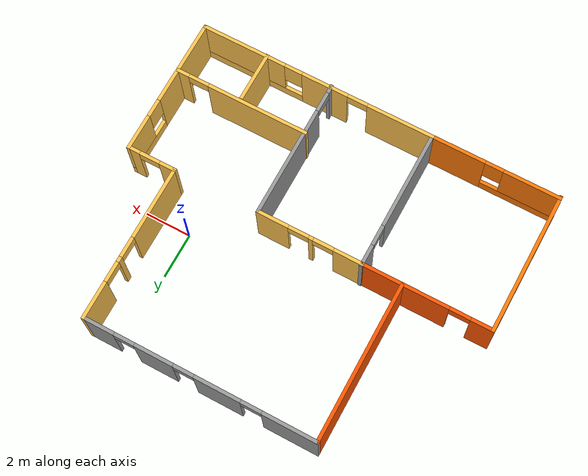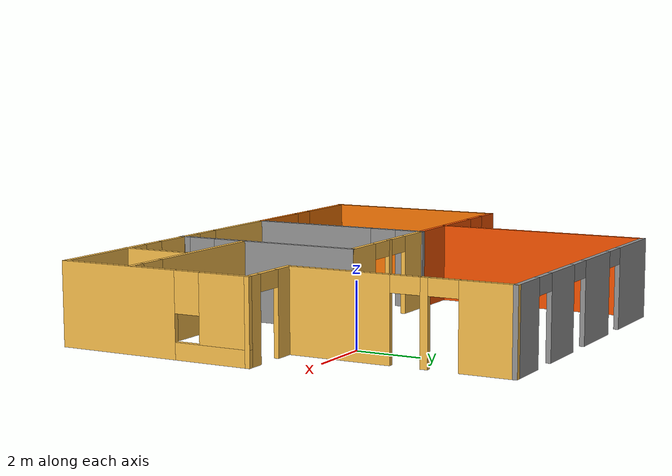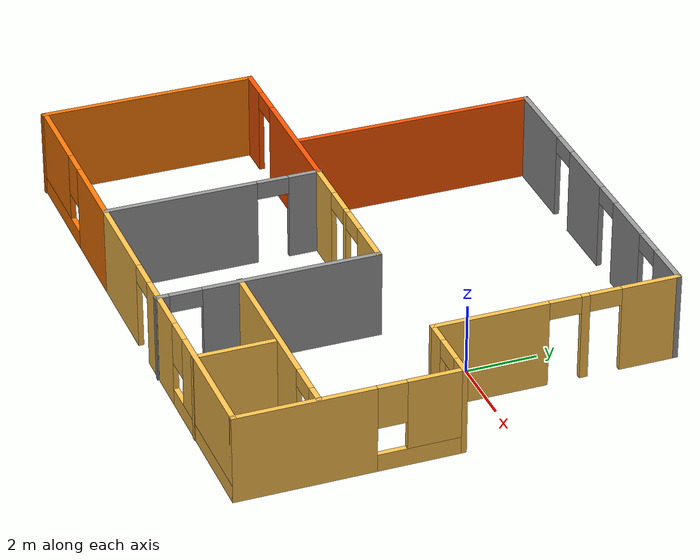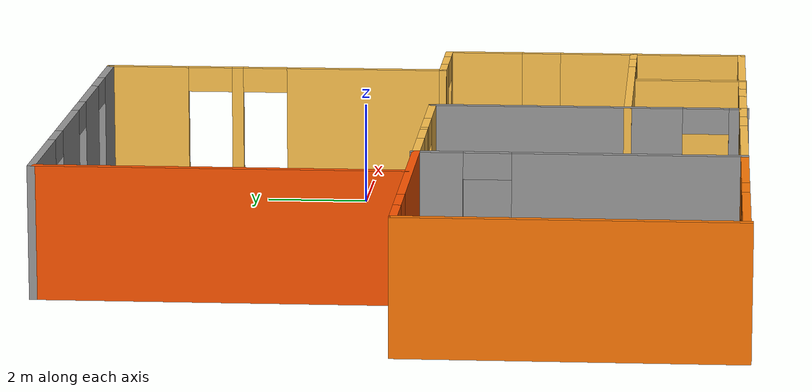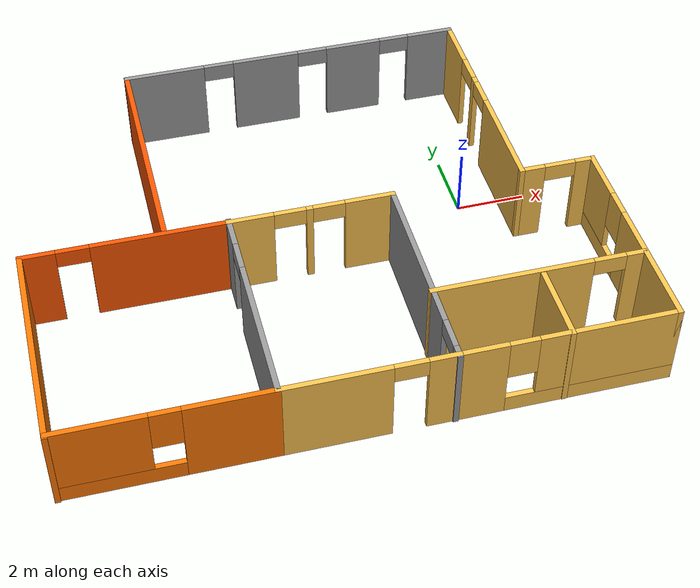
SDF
<?xml version='1.0'?>
<sdf version='1.6'>
  <model name='home'>
    <pose frame=''>-4.67293 -1.11377 0 0 -0 0</pose>
    <link name='Wall_29'>
      <collision name='Wall_29_Collision'>
        <geometry>
          <box>
            <size>6.25 0.15 2.5</size>
          </box>
        </geometry>
        <pose frame=''>0 0 1.25 0 -0 0</pose>
      </collision>
      <visual name='Wall_29_Visual'>
        <pose frame=''>0 0 1.25 0 -0 0</pose>
        <geometry>
          <box>
            <size>6.25 0.15 2.5</size>
          </box>
        </geometry>
        <material>
          <script>
            <uri>file://media/materials/scripts/gazebo.material</uri>
            <name>Gazebo/Grey</name>
          </script>
          <ambient>0.996078 0.47451 0.0196078 1</ambient>
        </material>
        <meta>
          <layer>0</layer>
        </meta>
      </visual>
      <pose frame=''>-8.03132 -3.44452 0 0 -0 1.5708</pose>
    </link>
    <link name='Wall_30'>
      <pose frame=''>-5.23132 -0.394516 0 0 -0 0</pose>
      <visual name='Wall_30_Visual_0'>
        <pose frame=''>-2.36576 0 1.25 0 -0 0</pose>
        <geometry>
          <box>
            <size>1.01847 0.15 2.5</size>
          </box>
        </geometry>
        <material>
          <script>
            <uri>file://media/materials/scripts/gazebo.material</uri>
            <name>Gazebo/Grey</name>
          </script>
          <ambient>1 0.333333 0 1</ambient>
        </material>
        <meta>
          <layer>0</layer>
        </meta>
      </visual>
      <collision name='Wall_30_Collision_0'>
        <geometry>
          <box>
            <size>1.01847 0.15 2.5</size>
          </box>
        </geometry>
        <pose frame=''>-2.36576 0 1.25 0 -0 0</pose>
      </collision>
      <visual name='Wall_30_Visual_1'>
        <pose frame=''>0.959236 0 1.25 0 -0 0</pose>
        <geometry>
          <box>
            <size>3.83153 0.15 2.5</size>
          </box>
        </geometry>
        <material>
          <script>
            <uri>file://media/materials/scripts/gazebo.material</uri>
            <name>Gazebo/Grey</name>
          </script>
          <ambient>1 0.333333 0 1</ambient>
        </material>
        <meta>
          <layer>0</layer>
        </meta>
      </visual>
      <collision name='Wall_30_Collision_1'>
        <geometry>
          <box>
            <size>3.83153 0.15 2.5</size>
          </box>
        </geometry>
        <pose frame=''>0.959236 0 1.25 0 -0 0</pose>
      </collision>
      <visual name='Wall_30_Visual_2'>
        <pose frame=''>-1.40653 0 2.25 0 -0 0</pose>
        <geometry>
          <box>
            <size>0.9 0.15 0.5</size>
          </box>
        </geometry>
        <material>
          <script>
            <uri>file://media/materials/scripts/gazebo.material</uri>
            <name>Gazebo/Grey</name>
          </script>
          <ambient>1 0.333333 0 1</ambient>
        </material>
        <meta>
          <layer>0</layer>
        </meta>
      </visual>
      <collision name='Wall_30_Collision_2'>
        <geometry>
          <box>
            <size>0.9 0.15 0.5</size>
          </box>
        </geometry>
        <pose frame=''>-1.40653 0 2.25 0 -0 0</pose>
      </collision>
    </link>
    <link name='Wall_33'>
      <pose frame=''>-2.41868 -3.40548 0 0 0 -1.5708</pose>
      <visual name='Wall_33_Visual_0'>
        <pose frame=''>-2.63049 0 1.25 0 -0 0</pose>
        <geometry>
          <box>
            <size>0.989023 0.15 2.5</size>
          </box>
        </geometry>
        <material>
          <script>
            <uri>file://media/materials/scripts/gazebo.material</uri>
            <name>Gazebo/Grey</name>
          </script>
          <ambient>1 1 1 1</ambient>
        </material>
        <meta>
          <layer>0</layer>
        </meta>
      </visual>
      <collision name='Wall_33_Collision_0'>
        <geometry>
          <box>
            <size>0.989023 0.15 2.5</size>
          </box>
        </geometry>
        <pose frame=''>-2.63049 0 1.25 0 -0 0</pose>
      </collision>
      <visual name='Wall_33_Visual_1'>
        <pose frame=''>0.944511 0 1.25 0 -0 0</pose>
        <geometry>
          <box>
            <size>4.36098 0.15 2.5</size>
          </box>
        </geometry>
        <material>
          <script>
            <uri>file://media/materials/scripts/gazebo.material</uri>
            <name>Gazebo/Grey</name>
          </script>
          <ambient>1 1 1 1</ambient>
        </material>
        <meta>
          <layer>0</layer>
        </meta>
      </visual>
      <collision name='Wall_33_Collision_1'>
        <geometry>
          <box>
            <size>4.36098 0.15 2.5</size>
          </box>
        </geometry>
        <pose frame=''>0.944511 0 1.25 0 -0 0</pose>
      </collision>
      <visual name='Wall_33_Visual_2'>
        <pose frame=''>-1.68598 0 2.25 0 -0 0</pose>
        <geometry>
          <box>
            <size>0.9 0.15 0.5</size>
          </box>
        </geometry>
        <material>
          <script>
            <uri>file://media/materials/scripts/gazebo.material</uri>
            <name>Gazebo/Grey</name>
          </script>
          <ambient>1 1 1 1</ambient>
        </material>
        <meta>
          <layer>0</layer>
        </meta>
      </visual>
      <collision name='Wall_33_Collision_2'>
        <geometry>
          <box>
            <size>0.9 0.15 0.5</size>
          </box>
        </geometry>
        <pose frame=''>-1.68598 0 2.25 0 -0 0</pose>
      </collision>
    </link>
    <link name='Wall_34'>
      <pose frame=''>-5.21868 -6.45548 0 0 -0 3.14159</pose>
      <visual name='Wall_34_Visual_0'>
        <pose frame=''>-1.65698 0 1.25 0 -0 0</pose>
        <geometry>
          <box>
            <size>2.43604 0.15 2.5</size>
          </box>
        </geometry>
        <material>
          <script>
            <uri>file://media/materials/scripts/gazebo.material</uri>
            <name>Gazebo/Grey</name>
          </script>
          <ambient>0.996078 0.47451 0.0196078 1</ambient>
        </material>
        <meta>
          <layer>0</layer>
        </meta>
      </visual>
      <collision name='Wall_34_Collision_0'>
        <geometry>
          <box>
            <size>2.43604 0.15 2.5</size>
          </box>
        </geometry>
        <pose frame=''>-1.65698 0 1.25 0 -0 0</pose>
      </collision>
      <visual name='Wall_34_Visual_1'>
        <pose frame=''>1.21802 0 0.25 0 -0 0</pose>
        <geometry>
          <box>
            <size>3.31396 0.15 0.5</size>
          </box>
        </geometry>
        <material>
          <script>
            <uri>file://media/materials/scripts/gazebo.material</uri>
            <name>Gazebo/Grey</name>
          </script>
          <ambient>0.996078 0.47451 0.0196078 1</ambient>
        </material>
        <meta>
          <layer>0</layer>
        </meta>
      </visual>
      <collision name='Wall_34_Collision_1'>
        <geometry>
          <box>
            <size>3.31396 0.15 0.5</size>
          </box>
        </geometry>
        <pose frame=''>1.21802 0 0.25 0 -0 0</pose>
      </collision>
      <visual name='Wall_34_Visual_2'>
        <pose frame=''>1.61802 0 1.5 0 -0 0</pose>
        <geometry>
          <box>
            <size>2.51396 0.15 2</size>
          </box>
        </geometry>
        <material>
          <script>
            <uri>file://media/materials/scripts/gazebo.material</uri>
            <name>Gazebo/Grey</name>
          </script>
          <ambient>0.996078 0.47451 0.0196078 1</ambient>
        </material>
        <meta>
          <layer>0</layer>
        </meta>
      </visual>
      <collision name='Wall_34_Collision_2'>
        <geometry>
          <box>
            <size>2.51396 0.15 2</size>
          </box>
        </geometry>
        <pose frame=''>1.61802 0 1.5 0 -0 0</pose>
      </collision>
      <visual name='Wall_34_Visual_3'>
        <pose frame=''>-0.038964 0 1.9 0 -0 0</pose>
        <geometry>
          <box>
            <size>0.8 0.15 1.2</size>
          </box>
        </geometry>
        <material>
          <script>
            <uri>file://media/materials/scripts/gazebo.material</uri>
            <name>Gazebo/Grey</name>
          </script>
          <ambient>0.996078 0.47451 0.0196078 1</ambient>
        </material>
        <meta>
          <layer>0</layer>
        </meta>
      </visual>
      <collision name='Wall_34_Collision_3'>
        <geometry>
          <box>
            <size>0.8 0.15 1.2</size>
          </box>
        </geometry>
        <pose frame=''>-0.038964 0 1.9 0 -0 0</pose>
      </collision>
    </link>
    <link name='Wall_38'>
      <pose frame=''>-0.118679 -6.45548 0 0 -0 0</pose>
      <visual name='Wall_38_Visual_0'>
        <pose frame=''>-0.881556 0 1.25 0 -0 0</pose>
        <geometry>
          <box>
            <size>2.98689 0.15 2.5</size>
          </box>
        </geometry>
        <material>
          <script>
            <uri>file://media/materials/scripts/gazebo.material</uri>
            <name>Gazebo/Grey</name>
          </script>
          <ambient>1 0.764706 0.305882 1</ambient>
        </material>
        <meta>
          <layer>0</layer>
        </meta>
      </visual>
      <collision name='Wall_38_Collision_0'>
        <geometry>
          <box>
            <size>2.98689 0.15 2.5</size>
          </box>
        </geometry>
        <pose frame=''>-0.881556 0 1.25 0 -0 0</pose>
      </collision>
      <visual name='Wall_38_Visual_1'>
        <pose frame=''>1.94344 0 1.25 0 -0 0</pose>
        <geometry>
          <box>
            <size>0.863112 0.15 2.5</size>
          </box>
        </geometry>
        <material>
          <script>
            <uri>file://media/materials/scripts/gazebo.material</uri>
            <name>Gazebo/Grey</name>
          </script>
          <ambient>1 0.764706 0.305882 1</ambient>
        </material>
        <meta>
          <layer>0</layer>
        </meta>
      </visual>
      <collision name='Wall_38_Collision_1'>
        <geometry>
          <box>
            <size>0.863112 0.15 2.5</size>
          </box>
        </geometry>
        <pose frame=''>1.94344 0 1.25 0 -0 0</pose>
      </collision>
      <visual name='Wall_38_Visual_2'>
        <pose frame=''>1.06189 0 2.25 0 -0 0</pose>
        <geometry>
          <box>
            <size>0.9 0.15 0.5</size>
          </box>
        </geometry>
        <material>
          <script>
            <uri>file://media/materials/scripts/gazebo.material</uri>
            <name>Gazebo/Grey</name>
          </script>
          <ambient>1 0.764706 0.305882 1</ambient>
        </material>
        <meta>
          <layer>0</layer>
        </meta>
      </visual>
      <collision name='Wall_38_Collision_2'>
        <geometry>
          <box>
            <size>0.9 0.15 0.5</size>
          </box>
        </geometry>
        <pose frame=''>1.06189 0 2.25 0 -0 0</pose>
      </collision>
    </link>
    <link name='Wall_39'>
      <pose frame=''>5.10632 -6.45548 0 0 -0 0</pose>
      <visual name='Wall_39_Visual_0'>
        <pose frame=''>-2.31199 0 1.25 0 -0 0</pose>
        <geometry>
          <box>
            <size>1.37601 0.15 2.5</size>
          </box>
        </geometry>
        <material>
          <script>
            <uri>file://media/materials/scripts/gazebo.material</uri>
            <name>Gazebo/Grey</name>
          </script>
          <ambient>1 0.764706 0.305882 1</ambient>
        </material>
        <meta>
          <layer>0</layer>
        </meta>
      </visual>
      <collision name='Wall_39_Collision_0'>
        <geometry>
          <box>
            <size>1.37601 0.15 2.5</size>
          </box>
        </geometry>
        <pose frame=''>-2.31199 0 1.25 0 -0 0</pose>
      </collision>
      <visual name='Wall_39_Visual_1'>
        <pose frame=''>0.688007 0 0.25 0 -0 0</pose>
        <geometry>
          <box>
            <size>4.62399 0.15 0.5</size>
          </box>
        </geometry>
        <material>
          <script>
            <uri>file://media/materials/scripts/gazebo.material</uri>
            <name>Gazebo/Grey</name>
          </script>
          <ambient>1 0.764706 0.305882 1</ambient>
        </material>
        <meta>
          <layer>0</layer>
        </meta>
      </visual>
      <collision name='Wall_39_Collision_1'>
        <geometry>
          <box>
            <size>4.62399 0.15 0.5</size>
          </box>
        </geometry>
        <pose frame=''>0.688007 0 0.25 0 -0 0</pose>
      </collision>
      <visual name='Wall_39_Visual_2'>
        <pose frame=''>1.08801 0 1.5 0 -0 0</pose>
        <geometry>
          <box>
            <size>3.82399 0.15 2</size>
          </box>
        </geometry>
        <material>
          <script>
            <uri>file://media/materials/scripts/gazebo.material</uri>
            <name>Gazebo/Grey</name>
          </script>
          <ambient>1 0.764706 0.305882 1</ambient>
        </material>
        <meta>
          <layer>0</layer>
        </meta>
      </visual>
      <collision name='Wall_39_Collision_2'>
        <geometry>
          <box>
            <size>3.82399 0.15 2</size>
          </box>
        </geometry>
        <pose frame=''>1.08801 0 1.5 0 -0 0</pose>
      </collision>
      <visual name='Wall_39_Visual_3'>
        <pose frame=''>-1.22399 0 1.9 0 -0 0</pose>
        <geometry>
          <box>
            <size>0.8 0.15 1.2</size>
          </box>
        </geometry>
        <material>
          <script>
            <uri>file://media/materials/scripts/gazebo.material</uri>
            <name>Gazebo/Grey</name>
          </script>
          <ambient>1 0.764706 0.305882 1</ambient>
        </material>
        <meta>
          <layer>0</layer>
        </meta>
      </visual>
      <collision name='Wall_39_Collision_3'>
        <geometry>
          <box>
            <size>0.8 0.15 1.2</size>
          </box>
        </geometry>
        <pose frame=''>-1.22399 0 1.9 0 -0 0</pose>
      </collision>
    </link>
    <link name='Wall_40'>
      <pose frame=''>8.03132 -3.40548 0 0 -0 1.5708</pose>
      <visual name='Wall_40_Visual_0'>
        <pose frame=''>-1.2027 0 1.25 0 -0 0</pose>
        <geometry>
          <box>
            <size>3.8446 0.15 2.5</size>
          </box>
        </geometry>
        <material>
          <script>
            <uri>file://media/materials/scripts/gazebo.material</uri>
            <name>Gazebo/Grey</name>
          </script>
          <ambient>1 0.764706 0.305882 1</ambient>
        </material>
        <meta>
          <layer>0</layer>
        </meta>
      </visual>
      <collision name='Wall_40_Collision_0'>
        <geometry>
          <box>
            <size>3.8446 0.15 2.5</size>
          </box>
        </geometry>
        <pose frame=''>-1.2027 0 1.25 0 -0 0</pose>
      </collision>
      <visual name='Wall_40_Visual_1'>
        <pose frame=''>1.9223 0 0.25 0 -0 0</pose>
        <geometry>
          <box>
            <size>2.4054 0.15 0.5</size>
          </box>
        </geometry>
        <material>
          <script>
            <uri>file://media/materials/scripts/gazebo.material</uri>
            <name>Gazebo/Grey</name>
          </script>
          <ambient>1 0.764706 0.305882 1</ambient>
        </material>
        <meta>
          <layer>0</layer>
        </meta>
      </visual>
      <collision name='Wall_40_Collision_1'>
        <geometry>
          <box>
            <size>2.4054 0.15 0.5</size>
          </box>
        </geometry>
        <pose frame=''>1.9223 0 0.25 0 -0 0</pose>
      </collision>
      <visual name='Wall_40_Visual_2'>
        <pose frame=''>2.3223 0 1.5 0 -0 0</pose>
        <geometry>
          <box>
            <size>1.6054 0.15 2</size>
          </box>
        </geometry>
        <material>
          <script>
            <uri>file://media/materials/scripts/gazebo.material</uri>
            <name>Gazebo/Grey</name>
          </script>
          <ambient>1 0.764706 0.305882 1</ambient>
        </material>
        <meta>
          <layer>0</layer>
        </meta>
      </visual>
      <collision name='Wall_40_Collision_2'>
        <geometry>
          <box>
            <size>1.6054 0.15 2</size>
          </box>
        </geometry>
        <pose frame=''>2.3223 0 1.5 0 -0 0</pose>
      </collision>
      <visual name='Wall_40_Visual_3'>
        <pose frame=''>1.1196 0 1.9 0 -0 0</pose>
        <geometry>
          <box>
            <size>0.8 0.15 1.2</size>
          </box>
        </geometry>
        <material>
          <script>
            <uri>file://media/materials/scripts/gazebo.material</uri>
            <name>Gazebo/Grey</name>
          </script>
          <ambient>1 0.764706 0.305882 1</ambient>
        </material>
        <meta>
          <layer>0</layer>
        </meta>
      </visual>
      <collision name='Wall_40_Collision_3'>
        <geometry>
          <box>
            <size>0.8 0.15 1.2</size>
          </box>
        </geometry>
        <pose frame=''>1.1196 0 1.9 0 -0 0</pose>
      </collision>
    </link>
    <link name='Wall_41'>
      <pose frame=''>6.98132 -0.355484 0 0 -0 3.14159</pose>
      <visual name='Wall_41_Visual_0'>
        <pose frame=''>-0.827467 0 1.25 0 -0 0</pose>
        <geometry>
          <box>
            <size>0.595067 0.15 2.5</size>
          </box>
        </geometry>
        <material>
          <script>
            <uri>file://media/materials/scripts/gazebo.material</uri>
            <name>Gazebo/Grey</name>
          </script>
          <ambient>1 0.764706 0.305882 1</ambient>
        </material>
        <meta>
          <layer>0</layer>
        </meta>
      </visual>
      <collision name='Wall_41_Collision_0'>
        <geometry>
          <box>
            <size>0.595067 0.15 2.5</size>
          </box>
        </geometry>
        <pose frame=''>-0.827467 0 1.25 0 -0 0</pose>
      </collision>
      <visual name='Wall_41_Visual_1'>
        <pose frame=''>0.747533 0 1.25 0 -0 0</pose>
        <geometry>
          <box>
            <size>0.754933 0.15 2.5</size>
          </box>
        </geometry>
        <material>
          <script>
            <uri>file://media/materials/scripts/gazebo.material</uri>
            <name>Gazebo/Grey</name>
          </script>
          <ambient>1 0.764706 0.305882 1</ambient>
        </material>
        <meta>
          <layer>0</layer>
        </meta>
      </visual>
      <collision name='Wall_41_Collision_1'>
        <geometry>
          <box>
            <size>0.754933 0.15 2.5</size>
          </box>
        </geometry>
        <pose frame=''>0.747533 0 1.25 0 -0 0</pose>
      </collision>
      <visual name='Wall_41_Visual_2'>
        <pose frame=''>-0.079933 0 2.25 0 -0 0</pose>
        <geometry>
          <box>
            <size>0.9 0.15 0.5</size>
          </box>
        </geometry>
        <material>
          <script>
            <uri>file://media/materials/scripts/gazebo.material</uri>
            <name>Gazebo/Grey</name>
          </script>
          <ambient>1 0.764706 0.305882 1</ambient>
        </material>
        <meta>
          <layer>0</layer>
        </meta>
      </visual>
      <collision name='Wall_41_Collision_2'>
        <geometry>
          <box>
            <size>0.9 0.15 0.5</size>
          </box>
        </geometry>
        <pose frame=''>-0.079933 0 2.25 0 -0 0</pose>
      </collision>
    </link>
    <link name='Wall_42'>
      <pose frame=''>5.93132 3.06952 0 0 -0 1.5708</pose>
      <visual name='Wall_42_Visual_0'>
        <pose frame=''>-1.86127 0 1.25 0 -0 0</pose>
        <geometry>
          <box>
            <size>3.27747 0.15 2.5</size>
          </box>
        </geometry>
        <material>
          <script>
            <uri>file://media/materials/scripts/gazebo.material</uri>
            <name>Gazebo/Grey</name>
          </script>
          <ambient>1 0.764706 0.305882 1</ambient>
        </material>
        <meta>
          <layer>0</layer>
        </meta>
      </visual>
      <collision name='Wall_42_Collision_0'>
        <geometry>
          <box>
            <size>3.27747 0.15 2.5</size>
          </box>
        </geometry>
        <pose frame=''>-1.86127 0 1.25 0 -0 0</pose>
      </collision>
      <visual name='Wall_42_Visual_1'>
        <pose frame=''>0.793847 0 1.25 0 -0 0</pose>
        <geometry>
          <box>
            <size>0.232756 0.15 2.5</size>
          </box>
        </geometry>
        <material>
          <script>
            <uri>file://media/materials/scripts/gazebo.material</uri>
            <name>Gazebo/Grey</name>
          </script>
          <ambient>1 0.764706 0.305882 1</ambient>
        </material>
        <meta>
          <layer>0</layer>
        </meta>
      </visual>
      <collision name='Wall_42_Collision_1'>
        <geometry>
          <box>
            <size>0.232756 0.15 2.5</size>
          </box>
        </geometry>
        <pose frame=''>0.793847 0 1.25 0 -0 0</pose>
      </collision>
      <visual name='Wall_42_Visual_2'>
        <pose frame=''>2.65511 0 1.25 0 -0 0</pose>
        <geometry>
          <box>
            <size>1.68978 0.15 2.5</size>
          </box>
        </geometry>
        <material>
          <script>
            <uri>file://media/materials/scripts/gazebo.material</uri>
            <name>Gazebo/Grey</name>
          </script>
          <ambient>1 0.764706 0.305882 1</ambient>
        </material>
        <meta>
          <layer>0</layer>
        </meta>
      </visual>
      <collision name='Wall_42_Collision_2'>
        <geometry>
          <box>
            <size>1.68978 0.15 2.5</size>
          </box>
        </geometry>
        <pose frame=''>2.65511 0 1.25 0 -0 0</pose>
      </collision>
      <visual name='Wall_42_Visual_3'>
        <pose frame=''>0.227469 0 2.25 0 -0 0</pose>
        <geometry>
          <box>
            <size>0.9 0.15 0.5</size>
          </box>
        </geometry>
        <material>
          <script>
            <uri>file://media/materials/scripts/gazebo.material</uri>
            <name>Gazebo/Grey</name>
          </script>
          <ambient>1 0.764706 0.305882 1</ambient>
        </material>
        <meta>
          <layer>0</layer>
        </meta>
      </visual>
      <collision name='Wall_42_Collision_3'>
        <geometry>
          <box>
            <size>0.9 0.15 0.5</size>
          </box>
        </geometry>
        <pose frame=''>0.227469 0 2.25 0 -0 0</pose>
      </collision>
      <visual name='Wall_42_Visual_4'>
        <pose frame=''>1.36023 0 2.25 0 -0 0</pose>
        <geometry>
          <box>
            <size>0.9 0.15 0.5</size>
          </box>
        </geometry>
        <material>
          <script>
            <uri>file://media/materials/scripts/gazebo.material</uri>
            <name>Gazebo/Grey</name>
          </script>
          <ambient>1 0.764706 0.305882 1</ambient>
        </material>
        <meta>
          <layer>0</layer>
        </meta>
      </visual>
      <collision name='Wall_42_Collision_4'>
        <geometry>
          <box>
            <size>0.9 0.15 0.5</size>
          </box>
        </geometry>
        <pose frame=''>1.36023 0 2.25 0 -0 0</pose>
      </collision>
    </link>
    <link name='Wall_43'>
      <pose frame=''>0.881321 6.49452 0 0 -0 3.14159</pose>
      <visual name='Wall_43_Visual_0'>
        <pose frame=''>-4.40937 0 1.25 0 -0 0</pose>
        <geometry>
          <box>
            <size>1.43125 0.15 2.5</size>
          </box>
        </geometry>
        <material>
          <script>
            <uri>file://media/materials/scripts/gazebo.material</uri>
            <name>Gazebo/Grey</name>
          </script>
          <ambient>1 1 1 1</ambient>
        </material>
        <meta>
          <layer>0</layer>
        </meta>
      </visual>
      <collision name='Wall_43_Collision_0'>
        <geometry>
          <box>
            <size>1.43125 0.15 2.5</size>
          </box>
        </geometry>
        <pose frame=''>-4.40937 0 1.25 0 -0 0</pose>
      </collision>
      <visual name='Wall_43_Visual_1'>
        <pose frame=''>-1.94917 0 1.25 0 -0 0</pose>
        <geometry>
          <box>
            <size>1.68916 0.15 2.5</size>
          </box>
        </geometry>
        <material>
          <script>
            <uri>file://media/materials/scripts/gazebo.material</uri>
            <name>Gazebo/Grey</name>
          </script>
          <ambient>1 1 1 1</ambient>
        </material>
        <meta>
          <layer>0</layer>
        </meta>
      </visual>
      <collision name='Wall_43_Collision_1'>
        <geometry>
          <box>
            <size>1.68916 0.15 2.5</size>
          </box>
        </geometry>
        <pose frame=''>-1.94917 0 1.25 0 -0 0</pose>
      </collision>
      <visual name='Wall_43_Visual_2'>
        <pose frame=''>0.801811 0 1.25 0 -0 0</pose>
        <geometry>
          <box>
            <size>2.0128 0.15 2.5</size>
          </box>
        </geometry>
        <material>
          <script>
            <uri>file://media/materials/scripts/gazebo.material</uri>
            <name>Gazebo/Grey</name>
          </script>
          <ambient>1 1 1 1</ambient>
        </material>
        <meta>
          <layer>0</layer>
        </meta>
      </visual>
      <collision name='Wall_43_Collision_2'>
        <geometry>
          <box>
            <size>2.0128 0.15 2.5</size>
          </box>
        </geometry>
        <pose frame=''>0.801811 0 1.25 0 -0 0</pose>
      </collision>
      <visual name='Wall_43_Visual_3'>
        <pose frame=''>3.91661 0 1.25 0 -0 0</pose>
        <geometry>
          <box>
            <size>2.41679 0.15 2.5</size>
          </box>
        </geometry>
        <material>
          <script>
            <uri>file://media/materials/scripts/gazebo.material</uri>
            <name>Gazebo/Grey</name>
          </script>
          <ambient>1 1 1 1</ambient>
        </material>
        <meta>
          <layer>0</layer>
        </meta>
      </visual>
      <collision name='Wall_43_Collision_3'>
        <geometry>
          <box>
            <size>2.41679 0.15 2.5</size>
          </box>
        </geometry>
        <pose frame=''>3.91661 0 1.25 0 -0 0</pose>
      </collision>
      <visual name='Wall_43_Visual_4'>
        <pose frame=''>-3.24375 0 2.25 0 -0 0</pose>
        <geometry>
          <box>
            <size>0.9 0.15 0.5</size>
          </box>
        </geometry>
        <material>
          <script>
            <uri>file://media/materials/scripts/gazebo.material</uri>
            <name>Gazebo/Grey</name>
          </script>
          <ambient>1 1 1 1</ambient>
        </material>
        <meta>
          <layer>0</layer>
        </meta>
      </visual>
      <collision name='Wall_43_Collision_4'>
        <geometry>
          <box>
            <size>0.9 0.15 0.5</size>
          </box>
        </geometry>
        <pose frame=''>-3.24375 0 2.25 0 -0 0</pose>
      </collision>
      <visual name='Wall_43_Visual_5'>
        <pose frame=''>-0.654589 0 2.25 0 -0 0</pose>
        <geometry>
          <box>
            <size>0.9 0.15 0.5</size>
          </box>
        </geometry>
        <material>
          <script>
            <uri>file://media/materials/scripts/gazebo.material</uri>
            <name>Gazebo/Grey</name>
          </script>
          <ambient>1 1 1 1</ambient>
        </material>
        <meta>
          <layer>0</layer>
        </meta>
      </visual>
      <collision name='Wall_43_Collision_5'>
        <geometry>
          <box>
            <size>0.9 0.15 0.5</size>
          </box>
        </geometry>
        <pose frame=''>-0.654589 0 2.25 0 -0 0</pose>
      </collision>
      <visual name='Wall_43_Visual_6'>
        <pose frame=''>2.25821 0 2.25 0 -0 0</pose>
        <geometry>
          <box>
            <size>0.9 0.15 0.5</size>
          </box>
        </geometry>
        <material>
          <script>
            <uri>file://media/materials/scripts/gazebo.material</uri>
            <name>Gazebo/Grey</name>
          </script>
          <ambient>1 1 1 1</ambient>
        </material>
        <meta>
          <layer>0</layer>
        </meta>
      </visual>
      <collision name='Wall_43_Collision_6'>
        <geometry>
          <box>
            <size>0.9 0.15 0.5</size>
          </box>
        </geometry>
        <pose frame=''>2.25821 0 2.25 0 -0 0</pose>
      </collision>
    </link>
    <link name='Wall_44'>
      <collision name='Wall_44_Collision'>
        <geometry>
          <box>
            <size>7 0.15 2.5</size>
          </box>
        </geometry>
        <pose frame=''>0 0 1.25 0 -0 0</pose>
      </collision>
      <visual name='Wall_44_Visual'>
        <pose frame=''>0 0 1.25 0 -0 0</pose>
        <geometry>
          <box>
            <size>7 0.15 2.5</size>
          </box>
        </geometry>
        <material>
          <script>
            <uri>file://media/materials/scripts/gazebo.material</uri>
            <name>Gazebo/Grey</name>
          </script>
          <ambient>1 0.333333 0 1</ambient>
        </material>
        <meta>
          <layer>0</layer>
        </meta>
      </visual>
      <pose frame=''>-4.16868 3.06952 0 0 0 -1.5708</pose>
    </link>
    <link name='Wall_46'>
      <pose frame=''>-0.131321 -0.394516 0 0 -0 0</pose>
      <visual name='Wall_46_Visual_0'>
        <pose frame=''>-1.71314 0 1.25 0 -0 0</pose>
        <geometry>
          <box>
            <size>1.32372 0.15 2.5</size>
          </box>
        </geometry>
        <material>
          <script>
            <uri>file://media/materials/scripts/gazebo.material</uri>
            <name>Gazebo/Grey</name>
          </script>
          <ambient>1 0.764706 0.305882 1</ambient>
        </material>
        <meta>
          <layer>0</layer>
        </meta>
      </visual>
      <collision name='Wall_46_Collision_0'>
        <geometry>
          <box>
            <size>1.32372 0.15 2.5</size>
          </box>
        </geometry>
        <pose frame=''>-1.71314 0 1.25 0 -0 0</pose>
      </collision>
      <visual name='Wall_46_Visual_1'>
        <pose frame=''>-0.055979 0 1.25 0 -0 0</pose>
        <geometry>
          <box>
            <size>0.190608 0.15 2.5</size>
          </box>
        </geometry>
        <material>
          <script>
            <uri>file://media/materials/scripts/gazebo.material</uri>
            <name>Gazebo/Grey</name>
          </script>
          <ambient>1 0.764706 0.305882 1</ambient>
        </material>
        <meta>
          <layer>0</layer>
        </meta>
      </visual>
      <collision name='Wall_46_Collision_1'>
        <geometry>
          <box>
            <size>0.190608 0.15 2.5</size>
          </box>
        </geometry>
        <pose frame=''>-0.055979 0 1.25 0 -0 0</pose>
      </collision>
      <visual name='Wall_46_Visual_2'>
        <pose frame=''>1.65716 0 1.25 0 -0 0</pose>
        <geometry>
          <box>
            <size>1.43568 0.15 2.5</size>
          </box>
        </geometry>
        <material>
          <script>
            <uri>file://media/materials/scripts/gazebo.material</uri>
            <name>Gazebo/Grey</name>
          </script>
          <ambient>1 0.764706 0.305882 1</ambient>
        </material>
        <meta>
          <layer>0</layer>
        </meta>
      </visual>
      <collision name='Wall_46_Collision_2'>
        <geometry>
          <box>
            <size>1.43568 0.15 2.5</size>
          </box>
        </geometry>
        <pose frame=''>1.65716 0 1.25 0 -0 0</pose>
      </collision>
      <visual name='Wall_46_Visual_3'>
        <pose frame=''>-0.601283 0 2.25 0 -0 0</pose>
        <geometry>
          <box>
            <size>0.9 0.15 0.5</size>
          </box>
        </geometry>
        <material>
          <script>
            <uri>file://media/materials/scripts/gazebo.material</uri>
            <name>Gazebo/Grey</name>
          </script>
          <ambient>1 0.764706 0.305882 1</ambient>
        </material>
        <meta>
          <layer>0</layer>
        </meta>
      </visual>
      <collision name='Wall_46_Collision_3'>
        <geometry>
          <box>
            <size>0.9 0.15 0.5</size>
          </box>
        </geometry>
        <pose frame=''>-0.601283 0 2.25 0 -0 0</pose>
      </collision>
      <visual name='Wall_46_Visual_4'>
        <pose frame=''>0.489325 0 2.25 0 -0 0</pose>
        <geometry>
          <box>
            <size>0.9 0.15 0.5</size>
          </box>
        </geometry>
        <material>
          <script>
            <uri>file://media/materials/scripts/gazebo.material</uri>
            <name>Gazebo/Grey</name>
          </script>
          <ambient>1 0.764706 0.305882 1</ambient>
        </material>
        <meta>
          <layer>0</layer>
        </meta>
      </visual>
      <collision name='Wall_46_Collision_4'>
        <geometry>
          <box>
            <size>0.9 0.15 0.5</size>
          </box>
        </geometry>
        <pose frame=''>0.489325 0 2.25 0 -0 0</pose>
      </collision>
    </link>
    <link name='Wall_47'>
      <pose frame=''>2.16868 -3.44452 0 0 0 -1.5708</pose>
      <visual name='Wall_47_Visual_0'>
        <pose frame=''>-0.645037 0 1.25 0 -0 0</pose>
        <geometry>
          <box>
            <size>4.95993 0.15 2.5</size>
          </box>
        </geometry>
        <material>
          <script>
            <uri>file://media/materials/scripts/gazebo.material</uri>
            <name>Gazebo/Grey</name>
          </script>
          <ambient>1 1 1 1</ambient>
        </material>
        <meta>
          <layer>0</layer>
        </meta>
      </visual>
      <collision name='Wall_47_Collision_0'>
        <geometry>
          <box>
            <size>4.95993 0.15 2.5</size>
          </box>
        </geometry>
        <pose frame=''>-0.645037 0 1.25 0 -0 0</pose>
      </collision>
      <visual name='Wall_47_Visual_1'>
        <pose frame=''>2.92996 0 1.25 0 -0 0</pose>
        <geometry>
          <box>
            <size>0.390074 0.15 2.5</size>
          </box>
        </geometry>
        <material>
          <script>
            <uri>file://media/materials/scripts/gazebo.material</uri>
            <name>Gazebo/Grey</name>
          </script>
          <ambient>1 1 1 1</ambient>
        </material>
        <meta>
          <layer>0</layer>
        </meta>
      </visual>
      <collision name='Wall_47_Collision_1'>
        <geometry>
          <box>
            <size>0.390074 0.15 2.5</size>
          </box>
        </geometry>
        <pose frame=''>2.92996 0 1.25 0 -0 0</pose>
      </collision>
      <visual name='Wall_47_Visual_2'>
        <pose frame=''>2.28493 0 2.25 0 -0 0</pose>
        <geometry>
          <box>
            <size>0.9 0.15 0.5</size>
          </box>
        </geometry>
        <material>
          <script>
            <uri>file://media/materials/scripts/gazebo.material</uri>
            <name>Gazebo/Grey</name>
          </script>
          <ambient>1 1 1 1</ambient>
        </material>
        <meta>
          <layer>0</layer>
        </meta>
      </visual>
      <collision name='Wall_47_Collision_2'>
        <geometry>
          <box>
            <size>0.9 0.15 0.5</size>
          </box>
        </geometry>
        <pose frame=''>2.28493 0 2.25 0 -0 0</pose>
      </collision>
    </link>
    <link name='Wall_49'>
      <pose frame=''>5.06537 -4.21229 0 0 -0 0</pose>
      <visual name='Wall_49_Visual_0'>
        <pose frame=''>-0.740357 0 1.25 0 -0 0</pose>
        <geometry>
          <box>
            <size>4.51929 0.15 2.5</size>
          </box>
        </geometry>
        <material>
          <script>
            <uri>file://media/materials/scripts/gazebo.material</uri>
            <name>Gazebo/Grey</name>
          </script>
          <ambient>1 0.764706 0.305882 1</ambient>
        </material>
        <meta>
          <layer>0</layer>
        </meta>
      </visual>
      <collision name='Wall_49_Collision_0'>
        <geometry>
          <box>
            <size>4.51929 0.15 2.5</size>
          </box>
        </geometry>
        <pose frame=''>-0.740357 0 1.25 0 -0 0</pose>
      </collision>
      <visual name='Wall_49_Visual_1'>
        <pose frame=''>2.70964 0 1.25 0 -0 0</pose>
        <geometry>
          <box>
            <size>0.580713 0.15 2.5</size>
          </box>
        </geometry>
        <material>
          <script>
            <uri>file://media/materials/scripts/gazebo.material</uri>
            <name>Gazebo/Grey</name>
          </script>
          <ambient>1 0.764706 0.305882 1</ambient>
        </material>
        <meta>
          <layer>0</layer>
        </meta>
      </visual>
      <collision name='Wall_49_Collision_1'>
        <geometry>
          <box>
            <size>0.580713 0.15 2.5</size>
          </box>
        </geometry>
        <pose frame=''>2.70964 0 1.25 0 -0 0</pose>
      </collision>
      <visual name='Wall_49_Visual_2'>
        <pose frame=''>1.96929 0 2.25 0 -0 0</pose>
        <geometry>
          <box>
            <size>0.9 0.15 0.5</size>
          </box>
        </geometry>
        <material>
          <script>
            <uri>file://media/materials/scripts/gazebo.material</uri>
            <name>Gazebo/Grey</name>
          </script>
          <ambient>1 0.764706 0.305882 1</ambient>
        </material>
        <meta>
          <layer>0</layer>
        </meta>
      </visual>
      <collision name='Wall_49_Collision_2'>
        <geometry>
          <box>
            <size>0.9 0.15 0.5</size>
          </box>
        </geometry>
        <pose frame=''>1.96929 0 2.25 0 -0 0</pose>
      </collision>
    </link>
    <link name='Wall_51'>
      <collision name='Wall_51_Collision'>
        <geometry>
          <box>
            <size>2.25 0.15 2.5</size>
          </box>
        </geometry>
        <pose frame=''>0 0 1.25 0 -0 0</pose>
      </collision>
      <visual name='Wall_51_Visual'>
        <pose frame=''>0 0 1.25 0 -0 0</pose>
        <geometry>
          <box>
            <size>2.25 0.15 2.5</size>
          </box>
        </geometry>
        <material>
          <script>
            <uri>file://media/materials/scripts/gazebo.material</uri>
            <name>Gazebo/Grey</name>
          </script>
          <ambient>1 0.764706 0.305882 1</ambient>
        </material>
        <meta>
          <layer>0</layer>
        </meta>
      </visual>
      <pose frame=''>5.13408 -5.42411 0 0 0 -1.5708</pose>
    </link>
    <static>1</static>
  </model>
</sdf>
